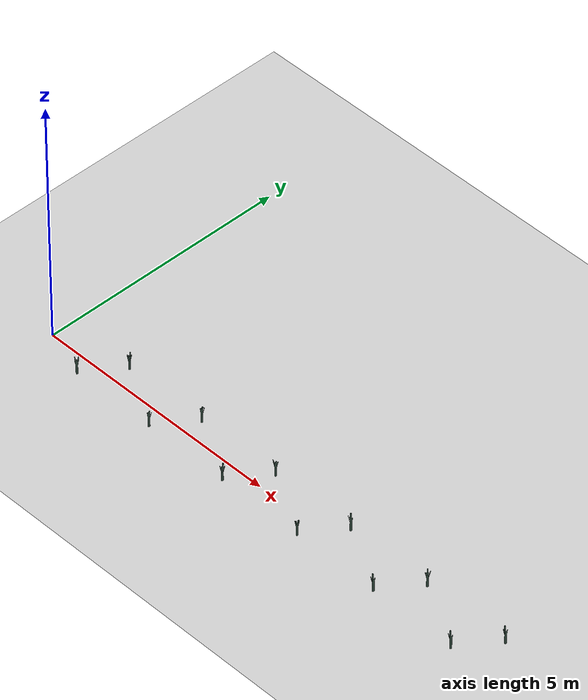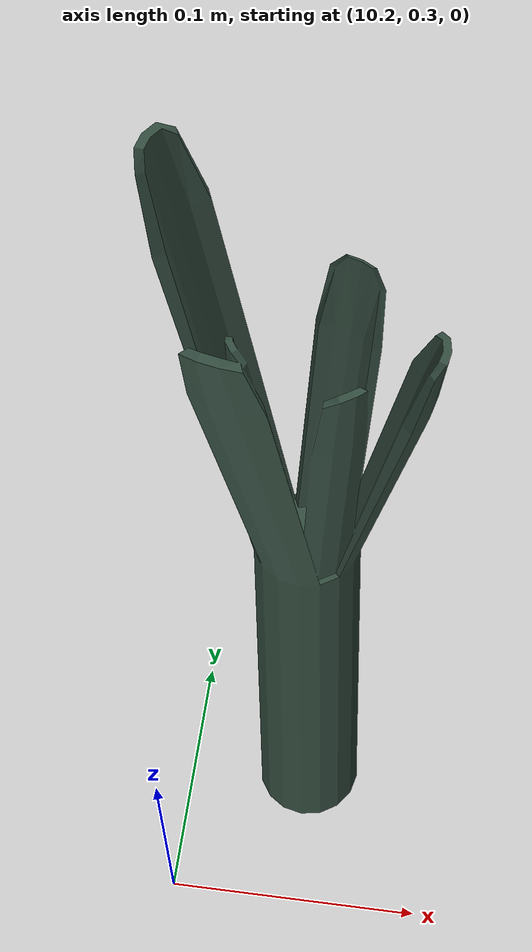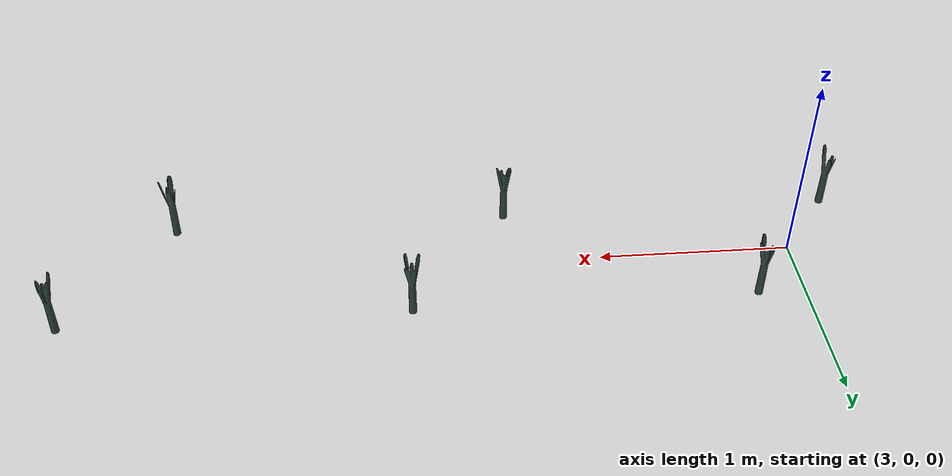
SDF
<sdf version="1.6">
 <world name="default">
  <light name="sun" type="directional">
   <pose>0 0 10 0 -0 0</pose>
   <diffuse>0.5 0.5 0.5 1</diffuse>
   <specular>0.1 0.1 0.1 1</specular>
   <attenuation>
    <range>1000</range>
    <constant>0.9</constant>
    <linear>0.01</linear>
    <quadratic>0.001</quadratic>
   </attenuation>
   <direction>0.9 0.5 -1</direction>
  </light>
  <scene><background>130 200 255 1</background><ambient>130 140 140 1</ambient></scene>
  <include><uri>model://dirt_plane</uri></include>
  <include><uri>model://Leek</uri><pose>1.500000 0.350000 0.15 0 0 132.291954</pose><static>0</static></include>
  <include><uri>model://Leek</uri><pose>3.250000 0.350000 0.15 0 0 -26.355134</pose><static>0</static></include>
  <include><uri>model://Leek</uri><pose>5.000000 0.350000 0.15 0 0 41.442460</pose><static>0</static></include>
  <include><uri>model://Leek</uri><pose>6.750000 0.350000 0.15 0 0 109.263071</pose><static>0</static></include>
  <include><uri>model://Leek</uri><pose>8.500000 0.350000 0.15 0 0 -87.253918</pose><static>0</static></include>
  <include>
   <uri>model://Leek</uri>
   <pose>10.250000 0.350000 0.15 0 0 166.091462</pose>
   <static>0</static>
  </include>
  <include><uri>model://Leek</uri><pose>0.975879 -0.350000 0.15 0 0 51.805841</pose><static>0</static></include>
  <include>
   <uri>model://Leek</uri>
   <pose>2.725879 -0.350000 0.15 0 0 -145.652056</pose>
   <static>0</static>
  </include>
  <include><uri>model://Leek</uri><pose>4.475879 -0.350000 0.15 0 0 44.476644</pose><static>0</static></include>
  <include>
   <uri>model://Leek</uri>
   <pose>6.225879 -0.350000 0.15 0 0 -158.720902</pose>
   <static>0</static>
  </include>
  <include>
   <uri>model://Leek</uri>
   <pose>7.975879 -0.350000 0.15 0 0 -97.893121</pose>
   <static>0</static>
  </include>
  <include><uri>model://Leek</uri><pose>9.725879 -0.350000 0.15 0 0 40.319917</pose><static>0</static></include>
 </world>
</sdf>

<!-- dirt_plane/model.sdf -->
<sdf version="1.4">
<model name="dirt_plane">
  <static>true</static>
    <link name="link">
      <collision name="collision">
        <geometry>
          <plane>
            <normal>0 0 1</normal>
            <size>100 100</size>
          </plane>
        </geometry>
        <surface>
          <friction>
            <ode>
              <mu>0.99</mu>
              <mu2>0.99</mu2>
            </ode>
          </friction>
        </surface>
      </collision>
      <visual name="visual">
        <cast_shadows>false</cast_shadows>
        <geometry>
          <plane>
            <normal>0 0 1</normal>
            <size>100 100</size>
          </plane>
        </geometry>
        <material>
          <script>
            <uri>model://ground_plane/materials/scripts/my_ground_plane.material</uri>
            <uri>model://ground_plane/materials/textures</uri>
            <name>my_ground_plane/Dirt</name>
          </script>
        </material>
      </visual>
    </link>
  </model>
</sdf>

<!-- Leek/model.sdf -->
<sdf version='1.6'>
  <model name='Leek'>
    <link name='link'>
      <pose frame=''>0 0 0 0 -0 0</pose>
      <inertial>
        <mass>1</mass>
        <inertia>
          <ixx>0.145833</ixx>
          <ixy>0</ixy>
          <ixz>0</ixz>
          <iyy>0.145833</iyy>
          <iyz>0</iyz>
          <izz>0.125</izz>
        </inertia>
        <pose frame=''>0 0 0 0 -0 0</pose>
      </inertial>
      <self_collide>0</self_collide>
      <kinematic>0</kinematic>
      <gravity>1</gravity>
      <visual name='visual'>
        <geometry>
          <mesh>
            <uri>model://Leek/Poireau.dae</uri>
            <scale>1 1 1</scale>
          </mesh>
        </geometry>
        <material>
          <script>
            <name>Gazebo/Grey</name>
            <uri>file://media/materials/scripts/gazebo.material</uri>
          </script>
          <ambient>0.3 0.6 0.5 0</ambient>
          <diffuse>0.2 0.3 0.25 0</diffuse>
          <specular>0 0 0 1</specular>
          <emissive>0 0 0 1</emissive>
          <shader type='vertex'>
            <normal_map>__default__</normal_map>
          </shader>
        </material>
        <pose frame=''>0 0 -0.08 0 -0 0</pose>
        <cast_shadows>1</cast_shadows>
        <transparency>0</transparency>
      </visual>
      <collision name='collision'>
        <laser_retro>0</laser_retro>
        <max_contacts>10</max_contacts>
        <pose frame=''>0 0 0 0 -0 0</pose>
        <geometry>
          <cylinder>
            <radius>0.02</radius>
            <length>0.25</length>
          </cylinder>
        </geometry>
        <surface>
          <friction>
            <ode>
              <mu>1</mu>
              <mu2>1</mu2>
              <fdir1>0 0 0</fdir1>
              <slip1>0</slip1>
              <slip2>0</slip2>
            </ode>
            <torsional>
              <coefficient>1</coefficient>
              <patch_radius>0</patch_radius>
              <surface_radius>0</surface_radius>
              <use_patch_radius>1</use_patch_radius>
              <ode>
                <slip>0</slip>
              </ode>
            </torsional>
          </friction>
          <bounce>
            <restitution_coefficient>0</restitution_coefficient>
            <threshold>1e+06</threshold>
          </bounce>
          <contact>
            <collide_without_contact>0</collide_without_contact>
            <collide_without_contact_bitmask>1</collide_without_contact_bitmask>
            <collide_bitmask>1</collide_bitmask>
            <ode>
              <soft_cfm>0</soft_cfm>
              <soft_erp>0.2</soft_erp>
              <kp>1e+13</kp>
              <kd>1</kd>
              <max_vel>0.01</max_vel>
              <min_depth>0</min_depth>
            </ode>
            <bullet>
              <split_impulse>1</split_impulse>
              <split_impulse_penetration_threshold>-0.01</split_impulse_penetration_threshold>
              <soft_cfm>0</soft_cfm>
              <soft_erp>0.2</soft_erp>
              <kp>1e+13</kp>
              <kd>1</kd>
            </bullet>
          </contact>
        </surface>
      </collision>
    </link>
    <static>0</static>
    <allow_auto_disable>1</allow_auto_disable>
  </model>
</sdf>
